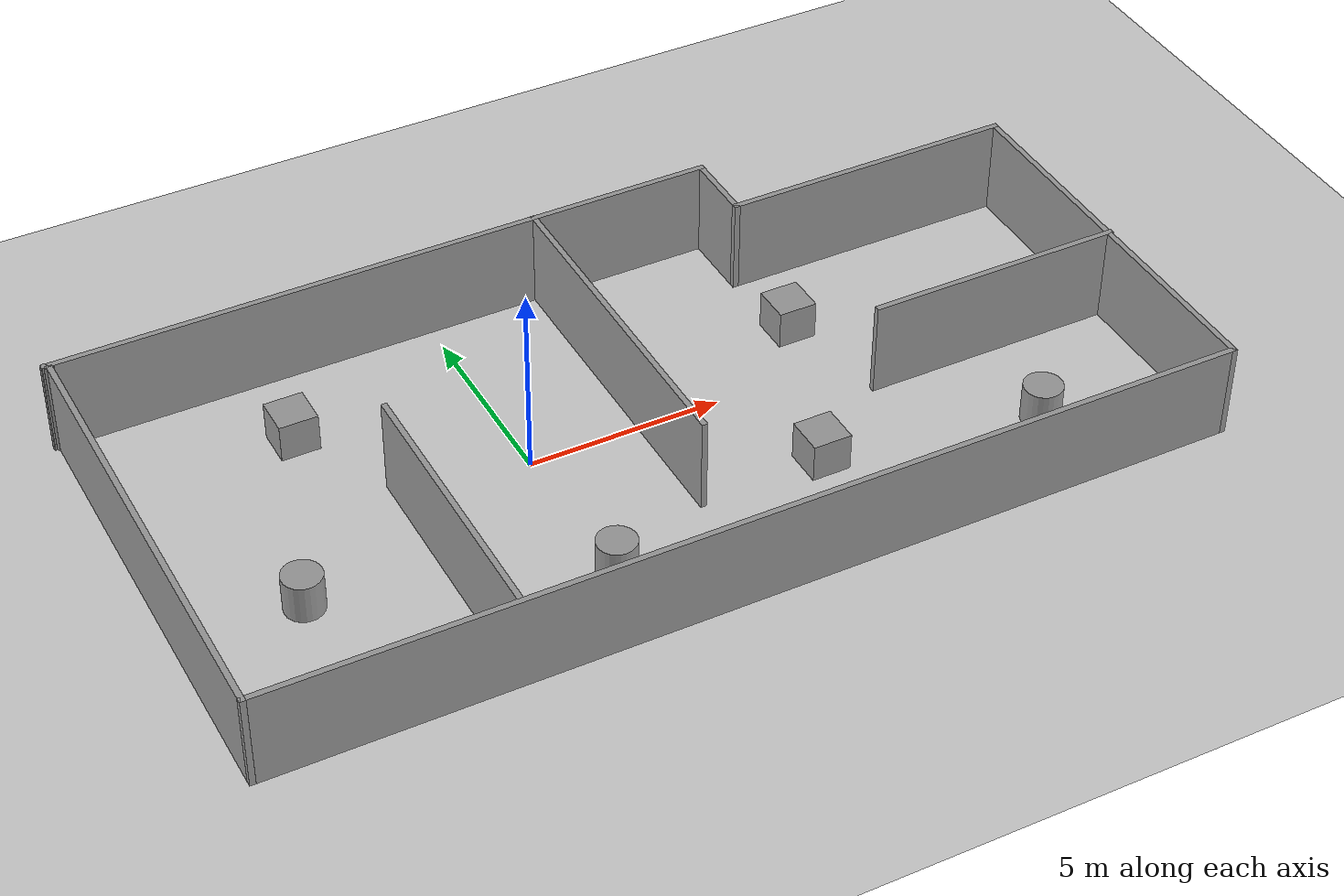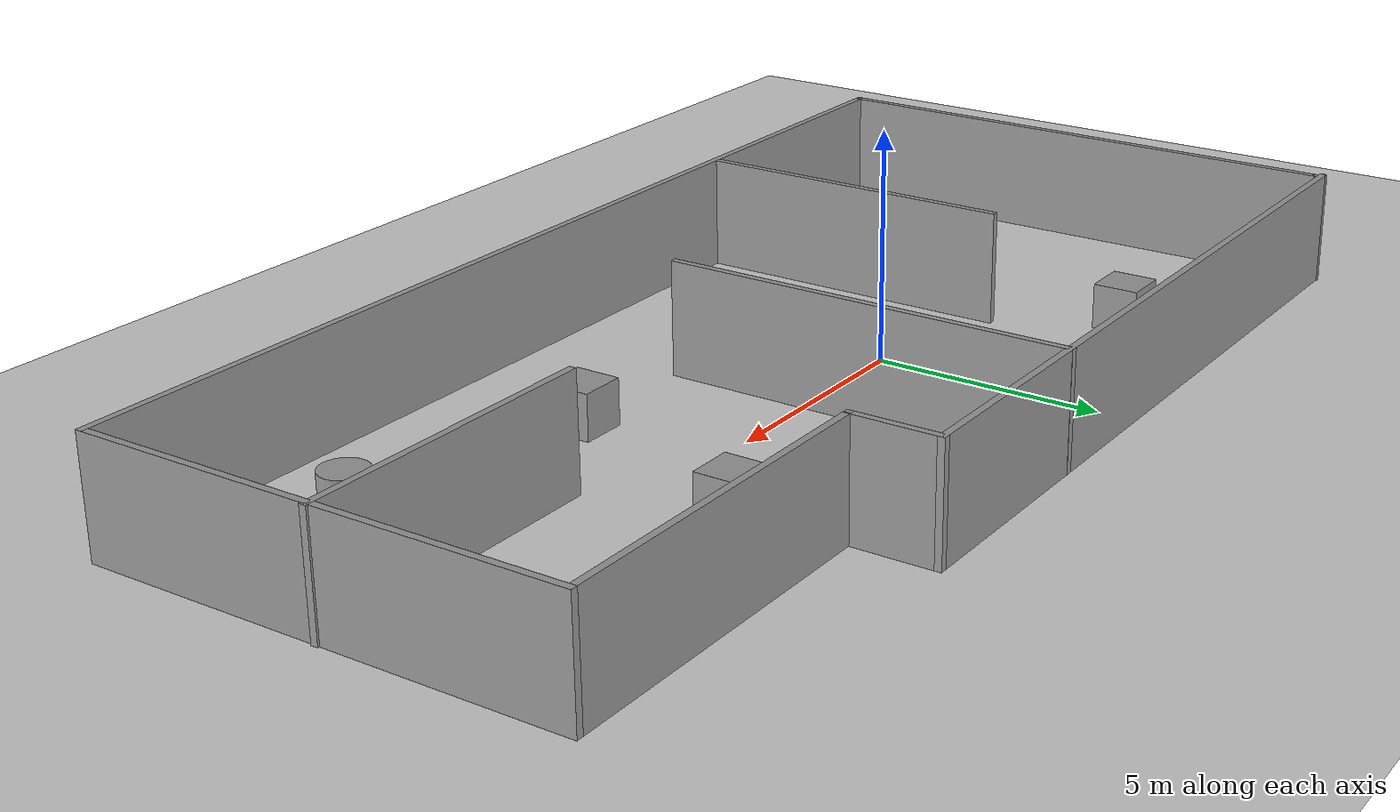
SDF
<sdf version="1.7">
 <world name="default">
  <light name="sun" type="directional">
   <pose>0 0 10 0 -0 0</pose>
   <diffuse>0.8 0.8 0.8 1</diffuse>
   <specular>0.2 0.2 0.2 1</specular>
   <attenuation>
    <range>1000</range>
    <constant>0.9</constant>
    <linear>0.01</linear>
    <quadratic>0.001</quadratic>
   </attenuation>
   <direction>-0.5 0.1 -0.9</direction>
   <spot><inner_angle>0</inner_angle><outer_angle>0</outer_angle><falloff>0</falloff></spot>
  </light>
  <model name="ground_plane">
   <static>1</static>
   <link name="link">
    <collision name="collision">
     <geometry><plane><normal>0 0 1</normal><size>100 100</size></plane></geometry>
     <surface><friction><ode><mu>100</mu><mu2>50</mu2></ode></friction></surface>
    </collision>
    <visual name="visual">
     <cast_shadows>0</cast_shadows>
     <geometry><plane><normal>0 0 1</normal><size>100 100</size></plane></geometry>
     <material>
      <script><uri>file://media/materials/scripts/gazebo.material</uri><name>Gazebo/Grey</name></script>
     </material>
    </visual>
   </link>
  </model>
  <gravity>0 0 -9.8</gravity>
  <magnetic_field>6e-06 2.3e-05 -4.2e-05</magnetic_field>
  <atmosphere type="adiabatic"/>
  <physics type="ode">
   <max_step_size>0.001</max_step_size>
   <real_time_factor>1</real_time_factor>
   <real_time_update_rate>1000</real_time_update_rate>
  </physics>
  <scene><ambient>0.4 0.4 0.4 1</ambient><background>0.7 0.7 0.7 1</background><shadows>1</shadows></scene>
  <audio><device>default</device></audio>
  <spherical_coordinates>
   <surface_model>EARTH_WGS84</surface_model>
   <latitude_deg>0</latitude_deg>
   <longitude_deg>0</longitude_deg>
   <elevation>0</elevation>
   <heading_deg>0</heading_deg>
  </spherical_coordinates>
  <model name="Untitled">
   <pose>2.74867 -0.340258 0 0 -0 0</pose>
   <link name="Wall_10">
    <collision name="Wall_10_Collision">
     <geometry><box><size>7.25 0.15 2.5</size></box></geometry>
     <pose>0 0 1.25 0 -0 0</pose>
    </collision>
    <visual name="Wall_10_Visual">
     <pose>0 0 1.25 0 -0 0</pose>
     <geometry><box><size>7.25 0.15 2.5</size></box></geometry>
     <material>
      <script><uri>file://media/materials/scripts/gazebo.material</uri><name>Gazebo/Grey</name></script>
      <ambient>1 1 1 1</ambient>
     </material>
     <meta><layer>0</layer></meta>
    </visual>
    <pose>-6.01359 -2.4202 0 0 -0 -1.5708</pose>
   </link>
   <link name="Wall_12">
    <collision name="Wall_12_Collision">
     <geometry><box><size>9 0.15 2.5</size></box></geometry>
     <pose>0 0 1.25 0 -0 0</pose>
    </collision>
    <visual name="Wall_12_Visual">
     <pose>0 0 1.25 0 -0 0</pose>
     <geometry><box><size>9 0.15 2.5</size></box></geometry>
     <material>
      <script><uri>file://media/materials/scripts/gazebo.material</uri><name>Gazebo/Grey</name></script>
      <ambient>1 1 1 1</ambient>
     </material>
     <meta><layer>0</layer></meta>
    </visual>
    <pose>0.177873 1.665 0 0 -0 -1.5708</pose>
   </link>
   <link name="Wall_14">
    <collision name="Wall_14_Collision">
     <geometry><box><size>6.75 0.15 2.5</size></box></geometry>
     <pose>0 0 1.25 0 -0 0</pose>
    </collision>
    <visual name="Wall_14_Visual">
     <pose>0 0 1.25 0 -0 0</pose>
     <geometry><box><size>6.75 0.15 2.5</size></box></geometry>
     <material>
      <script><uri>file://media/materials/scripts/gazebo.material</uri><name>Gazebo/Grey</name></script>
      <ambient>1 1 1 1</ambient>
     </material>
     <meta><layer>0</layer></meta>
    </visual>
    <pose>9.21201 -0.945749 0 0 -0 0</pose>
   </link>
   <link name="Wall_2">
    <collision name="Wall_2_Collision">
     <geometry><box><size>12.25 0.15 2.5</size></box></geometry>
     <pose>0 0 1.25 0 -0 0</pose>
    </collision>
    <visual name="Wall_2_Visual">
     <pose>0 0 1.25 0 -0 0</pose>
     <geometry><box><size>12.25 0.15 2.5</size></box></geometry>
     <material>
      <script><uri>file://media/materials/scripts/gazebo.material</uri><name>Gazebo/Grey</name></script>
      <ambient>1 1 1 1</ambient>
     </material>
     <meta><layer>0</layer></meta>
    </visual>
    <pose>-12.3809 -0.065533 0 0 -0 -1.5708</pose>
   </link>
   <link name="Wall_3">
    <collision name="Wall_3_Collision">
     <geometry><box><size>25 0.15 2.5</size></box></geometry>
     <pose>0 0 1.25 0 -0 0</pose>
    </collision>
    <visual name="Wall_3_Visual">
     <pose>0 0 1.25 0 -0 0</pose>
     <geometry><box><size>25 0.15 2.5</size></box></geometry>
     <material>
      <script><uri>file://media/materials/scripts/gazebo.material</uri><name>Gazebo/Grey</name></script>
      <ambient>1 1 1 1</ambient>
     </material>
     <meta><layer>0</layer></meta>
    </visual>
    <pose>0.044054 -6.11553 0 0 -0 0</pose>
   </link>
   <link name="Wall_4">
    <collision name="Wall_4_Collision">
     <geometry><box><size>10.5 0.15 2.5</size></box></geometry>
     <pose>0 0 1.25 0 -0 0</pose>
    </collision>
    <visual name="Wall_4_Visual">
     <pose>0 0 1.25 0 -0 0</pose>
     <geometry><box><size>10.5 0.15 2.5</size></box></geometry>
     <material>
      <script><uri>file://media/materials/scripts/gazebo.material</uri><name>Gazebo/Grey</name></script>
      <ambient>1 1 1 1</ambient>
     </material>
     <meta><layer>0</layer></meta>
    </visual>
    <pose>12.4691 -0.940533 0 0 -0 1.5708</pose>
   </link>
   <link name="Wall_5">
    <collision name="Wall_5_Collision">
     <geometry><box><size>7.75 0.15 2.5</size></box></geometry>
     <pose>0 0 1.25 0 -0 0</pose>
    </collision>
    <visual name="Wall_5_Visual">
     <pose>0 0 1.25 0 -0 0</pose>
     <geometry><box><size>7.75 0.15 2.5</size></box></geometry>
     <material>
      <script><uri>file://media/materials/scripts/gazebo.material</uri><name>Gazebo/Grey</name></script>
      <ambient>1 1 1 1</ambient>
     </material>
     <meta><layer>0</layer></meta>
    </visual>
    <pose>8.66905 4.23447 0 0 -0 3.14159</pose>
   </link>
   <link name="Wall_6">
    <collision name="Wall_6_Collision">
     <geometry><box><size>2 0.15 2.5</size></box></geometry>
     <pose>0 0 1.25 0 -0 0</pose>
    </collision>
    <visual name="Wall_6_Visual">
     <pose>0 0 1.25 0 -0 0</pose>
     <geometry><box><size>2 0.15 2.5</size></box></geometry>
     <material>
      <script><uri>file://media/materials/scripts/gazebo.material</uri><name>Gazebo/Grey</name></script>
      <ambient>1 1 1 1</ambient>
     </material>
     <meta><layer>0</layer></meta>
    </visual>
    <pose>4.86905 5.15947 0 0 -0 1.5708</pose>
   </link>
   <link name="Wall_7">
    <collision name="Wall_7_Collision">
     <geometry><box><size>17.5 0.15 2.5</size></box></geometry>
     <pose>0 0 1.25 0 -0 0</pose>
    </collision>
    <visual name="Wall_7_Visual">
     <pose>0 0 1.25 0 -0 0</pose>
     <geometry><box><size>17.5 0.15 2.5</size></box></geometry>
     <material>
      <script><uri>file://media/materials/scripts/gazebo.material</uri><name>Gazebo/Grey</name></script>
      <ambient>1 1 1 1</ambient>
     </material>
     <meta><layer>0</layer></meta>
    </visual>
    <pose>-3.80595 6.08447 0 0 -0 3.14159</pose>
   </link>
   <link name="Wall_8">
    <collision name="Wall_8_Collision">
     <geometry><box><size>0.291421 0.15 2.5</size></box></geometry>
     <pose>0 0 1.25 0 -0 0</pose>
    </collision>
    <visual name="Wall_8_Visual">
     <pose>0 0 1.25 0 -0 0</pose>
     <geometry><box><size>0.291421 0.15 2.5</size></box></geometry>
     <material>
      <script><uri>file://media/materials/scripts/gazebo.material</uri><name>Gazebo/Grey</name></script>
      <ambient>1 1 1 1</ambient>
     </material>
     <meta><layer>0</layer></meta>
    </visual>
    <pose>-12.4309 6.03447 0 0 -0 -0.785398</pose>
   </link>
   <static>1</static>
  </model>
  <model name="unit_box">
   <pose>-4.67333 3.33864 0.499995 -1e-05 -0 -0</pose>
   <link name="link">
    <inertial>
     <mass>1</mass>
     <inertia>
      <ixx>0.166667</ixx>
      <ixy>0</ixy>
      <ixz>0</ixz>
      <iyy>0.166667</iyy>
      <iyz>0</iyz>
      <izz>0.166667</izz>
     </inertia>
    </inertial>
    <collision name="collision"><geometry><box><size>1 1 1</size></box></geometry></collision>
    <visual name="visual">
     <geometry><box><size>1 1 1</size></box></geometry>
     <material>
      <script><name>Gazebo/Grey</name><uri>file://media/materials/scripts/gazebo.material</uri></script>
     </material>
    </visual>
   </link>
  </model>
  <model name="unit_cylinder">
   <pose>-6.6006 -2.03291 0.499992 -3e-06 -4e-06 -0</pose>
   <link name="link">
    <inertial>
     <mass>1</mass>
     <inertia><ixx>0.145833</ixx><ixy>0</ixy><ixz>0</ixz><iyy>0.145833</iyy><iyz>0</iyz><izz>0.125</izz></inertia>
    </inertial>
    <collision name="collision">
     <geometry><cylinder><radius>0.5</radius><length>1</length></cylinder></geometry>
    </collision>
    <visual name="visual">
     <geometry><cylinder><radius>0.5</radius><length>1</length></cylinder></geometry>
     <material>
      <script><name>Gazebo/Grey</name><uri>file://media/materials/scripts/gazebo.material</uri></script>
     </material>
    </visual>
   </link>
  </model>
  <model name="unit_cylinder_0">
   <pose>0.120902 -4.24563 0.499993 -3e-06 -3e-06 0</pose>
   <link name="link">
    <inertial>
     <mass>1</mass>
     <inertia><ixx>0.145833</ixx><ixy>0</ixy><ixz>0</ixz><iyy>0.145833</iyy><iyz>0</iyz><izz>0.125</izz></inertia>
    </inertial>
    <collision name="collision">
     <geometry><cylinder><radius>0.5</radius><length>1</length></cylinder></geometry>
    </collision>
    <visual name="visual">
     <geometry><cylinder><radius>0.5</radius><length>1</length></cylinder></geometry>
     <material>
      <script><name>Gazebo/Grey</name><uri>file://media/materials/scripts/gazebo.material</uri></script>
     </material>
    </visual>
   </link>
  </model>
  <model name="unit_box_0">
   <pose>6.14719 -3.05114 0.499995 0 1e-05 0</pose>
   <link name="link">
    <inertial>
     <mass>1</mass>
     <inertia>
      <ixx>0.166667</ixx>
      <ixy>0</ixy>
      <ixz>0</ixz>
      <iyy>0.166667</iyy>
      <iyz>0</iyz>
      <izz>0.166667</izz>
     </inertia>
    </inertial>
    <collision name="collision"><geometry><box><size>1 1 1</size></box></geometry></collision>
    <visual name="visual">
     <geometry><box><size>1 1 1</size></box></geometry>
     <material>
      <script><name>Gazebo/Grey</name><uri>file://media/materials/scripts/gazebo.material</uri></script>
     </material>
    </visual>
   </link>
  </model>
  <model name="unit_box_1">
   <pose>7.90555 1.67319 0.499995 -1e-05 -0 0</pose>
   <link name="link">
    <inertial>
     <mass>1</mass>
     <inertia>
      <ixx>0.166667</ixx>
      <ixy>0</ixy>
      <ixz>0</ixz>
      <iyy>0.166667</iyy>
      <iyz>0</iyz>
      <izz>0.166667</izz>
     </inertia>
    </inertial>
    <collision name="collision"><geometry><box><size>1 1 1</size></box></geometry></collision>
    <visual name="visual">
     <geometry><box><size>1 1 1</size></box></geometry>
     <material>
      <script><name>Gazebo/Grey</name><uri>file://media/materials/scripts/gazebo.material</uri></script>
     </material>
    </visual>
   </link>
  </model>
  <model name="unit_cylinder_1">
   <pose>11.6608 -4.05051 0.499997 3e-06 4e-06 -0</pose>
   <link name="link">
    <inertial>
     <mass>1</mass>
     <inertia><ixx>0.145833</ixx><ixy>0</ixy><ixz>0</ixz><iyy>0.145833</iyy><iyz>0</iyz><izz>0.125</izz></inertia>
    </inertial>
    <collision name="collision">
     <geometry><cylinder><radius>0.5</radius><length>1</length></cylinder></geometry>
    </collision>
    <visual name="visual">
     <geometry><cylinder><radius>0.5</radius><length>1</length></cylinder></geometry>
     <material>
      <script><name>Gazebo/Grey</name><uri>file://media/materials/scripts/gazebo.material</uri></script>
     </material>
    </visual>
   </link>
  </model>
 </world>
</sdf>
